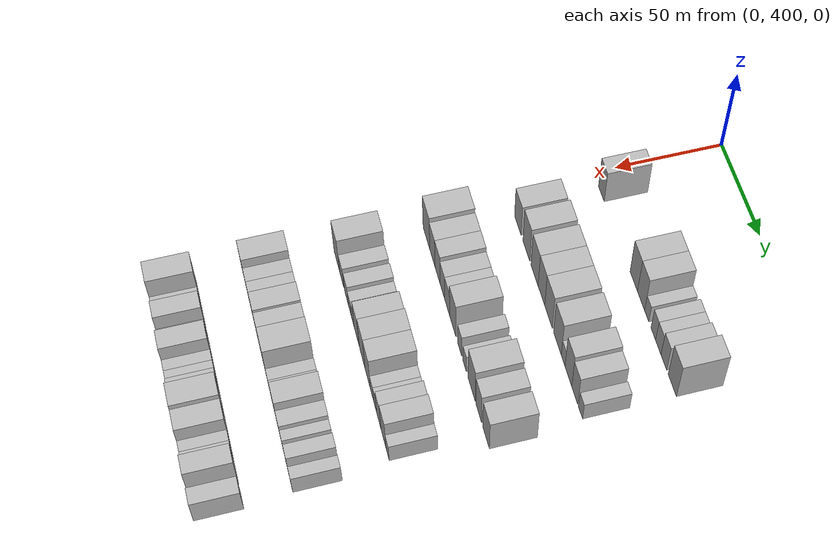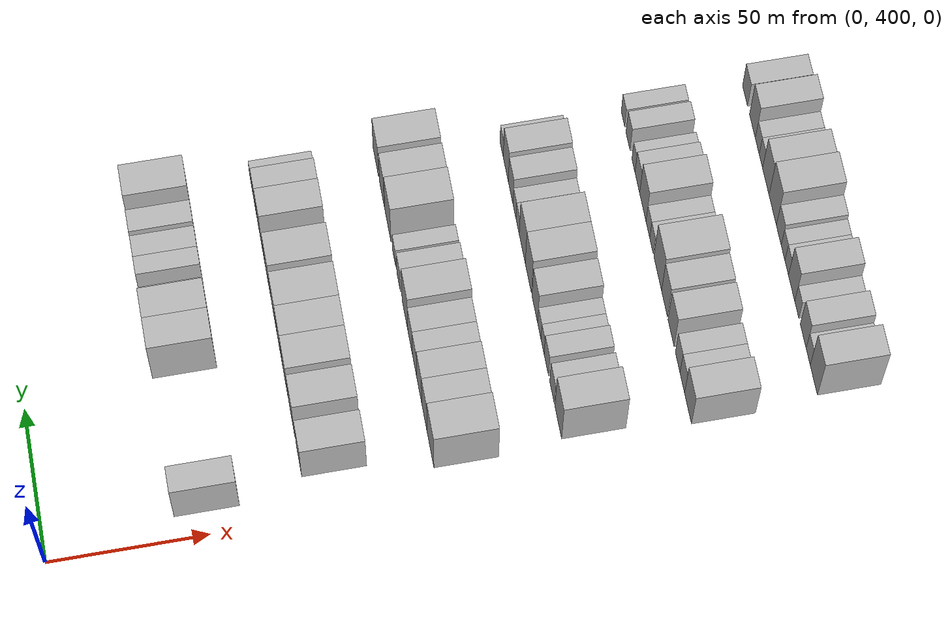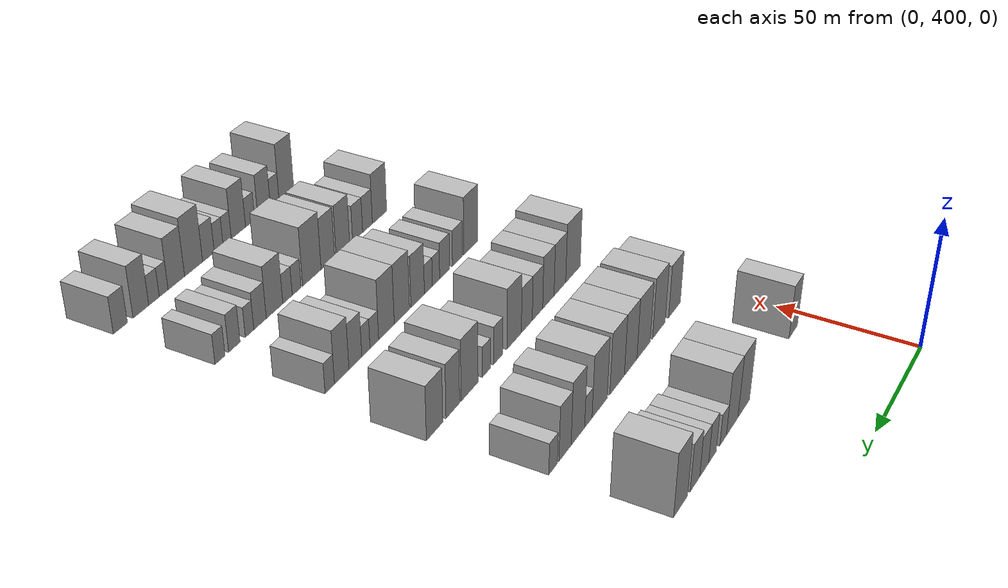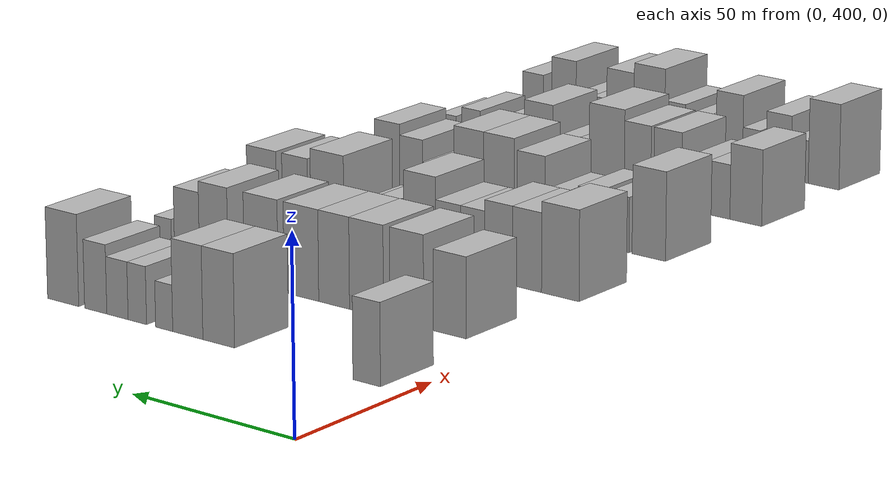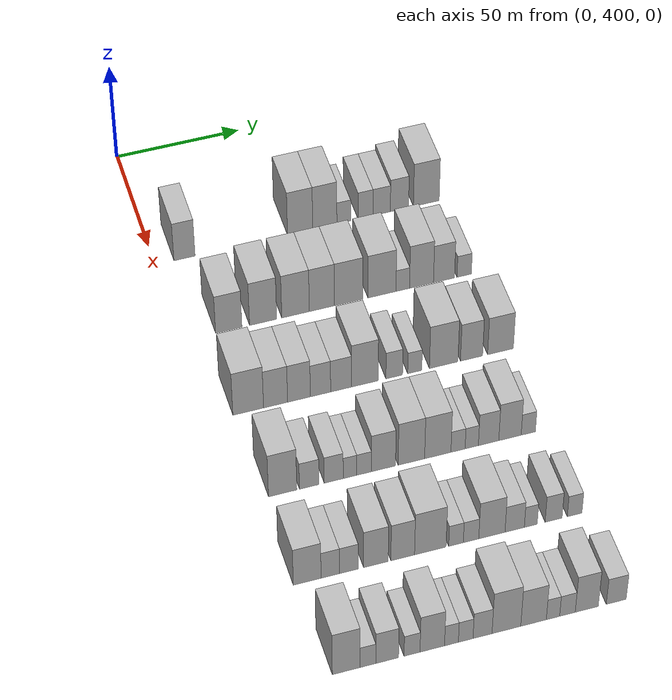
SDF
<sdf version="1.6">
 <world name="default">
  <model name="building_115">
   <static>1</static>
   <pose>50.0000 411.7737 0 0.000000 0.000000 0.000000</pose>
   <link name="link">
    <pose>0 0 10.50 0 0 0</pose>
    <collision name="collision"><geometry><box><size>20.0000 8.4492 21.0000</size></box></geometry></collision>
    <visual name="visual">
     <cast_shadows>0</cast_shadows>
     <geometry><box><size>20.0000 8.4492 21.0000</size></box></geometry>
     <material>
      <script>
       <uri>model://HANNAS_wall/materials/scripts</uri>
       <uri>model://HANNAS_wall/materials/textures</uri>
       <name>vrc/HANNAS_wall</name>
      </script>
     </material>
    </visual>
   </link>
  </model>
  <model name="building_116">
   <static>1</static>
   <pose>50.0000 458.3579 0 0.000000 0.000000 0.000000</pose>
   <link name="link">
    <pose>0 0 12.00 0 0 0</pose>
    <collision name="collision"><geometry><box><size>20.0000 10.2397 24.0000</size></box></geometry></collision>
    <visual name="visual">
     <cast_shadows>0</cast_shadows>
     <geometry><box><size>20.0000 10.2397 24.0000</size></box></geometry>
     <material>
      <script>
       <uri>model://HANNAS_wall/materials/scripts</uri>
       <uri>model://HANNAS_wall/materials/textures</uri>
       <name>vrc/HANNAS_wall</name>
      </script>
     </material>
    </visual>
   </link>
  </model>
  <model name="building_117">
   <static>1</static>
   <pose>50.0000 468.4056 0 0.000000 0.000000 0.000000</pose>
   <link name="link">
    <pose>0 0 12.00 0 0 0</pose>
    <collision name="collision"><geometry><box><size>20.0000 9.8557 24.0000</size></box></geometry></collision>
    <visual name="visual">
     <cast_shadows>0</cast_shadows>
     <geometry><box><size>20.0000 9.8557 24.0000</size></box></geometry>
     <material>
      <script>
       <uri>model://HANNAS_wall/materials/scripts</uri>
       <uri>model://HANNAS_wall/materials/textures</uri>
       <name>vrc/HANNAS_wall</name>
      </script>
     </material>
    </visual>
   </link>
  </model>
  <model name="building_118">
   <static>1</static>
   <pose>50.0000 476.1462 0 0.000000 0.000000 0.000000</pose>
   <link name="link">
    <pose>0 0 6.00 0 0 0</pose>
    <collision name="collision"><geometry><box><size>20.0000 5.6255 12.0000</size></box></geometry></collision>
    <visual name="visual">
     <cast_shadows>0</cast_shadows>
     <geometry><box><size>20.0000 5.6255 12.0000</size></box></geometry>
     <material>
      <script>
       <uri>model://HANNAS_wall/materials/scripts</uri>
       <uri>model://HANNAS_wall/materials/textures</uri>
       <name>vrc/HANNAS_wall</name>
      </script>
     </material>
    </visual>
   </link>
  </model>
  <model name="building_119">
   <static>1</static>
   <pose>50.0000 485.0264 0 0.000000 0.000000 0.000000</pose>
   <link name="link">
    <pose>0 0 7.50 0 0 0</pose>
    <collision name="collision"><geometry><box><size>20.0000 6.1349 15.0000</size></box></geometry></collision>
    <visual name="visual">
     <cast_shadows>0</cast_shadows>
     <geometry><box><size>20.0000 6.1349 15.0000</size></box></geometry>
     <material>
      <script>
       <uri>model://HANNAS_wall/materials/scripts</uri>
       <uri>model://HANNAS_wall/materials/textures</uri>
       <name>vrc/HANNAS_wall</name>
      </script>
     </material>
    </visual>
   </link>
  </model>
  <model name="building_120">
   <static>1</static>
   <pose>50.0000 491.6568 0 0.000000 0.000000 0.000000</pose>
   <link name="link">
    <pose>0 0 7.50 0 0 0</pose>
    <collision name="collision"><geometry><box><size>20.0000 7.1259 15.0000</size></box></geometry></collision>
    <visual name="visual">
     <cast_shadows>0</cast_shadows>
     <geometry><box><size>20.0000 7.1259 15.0000</size></box></geometry>
     <material>
      <script>
       <uri>model://HANNAS_wall/materials/scripts</uri>
       <uri>model://HANNAS_wall/materials/textures</uri>
       <name>vrc/HANNAS_wall</name>
      </script>
     </material>
    </visual>
   </link>
  </model>
  <model name="building_121">
   <static>1</static>
   <pose>50.0000 498.9661 0 0.000000 0.000000 0.000000</pose>
   <link name="link">
    <pose>0 0 9.00 0 0 0</pose>
    <collision name="collision"><geometry><box><size>20.0000 7.4927 18.0000</size></box></geometry></collision>
    <visual name="visual">
     <cast_shadows>0</cast_shadows>
     <geometry><box><size>20.0000 7.4927 18.0000</size></box></geometry>
     <material>
      <script>
       <uri>model://HANNAS_wall/materials/scripts</uri>
       <uri>model://HANNAS_wall/materials/textures</uri>
       <name>vrc/HANNAS_wall</name>
      </script>
     </material>
    </visual>
   </link>
  </model>
  <model name="building_122">
   <static>1</static>
   <pose>50.0000 510.0189 0 0.000000 0.000000 0.000000</pose>
   <link name="link">
    <pose>0 0 12.00 0 0 0</pose>
    <collision name="collision"><geometry><box><size>20.0000 10.6130 24.0000</size></box></geometry></collision>
    <visual name="visual">
     <cast_shadows>0</cast_shadows>
     <geometry><box><size>20.0000 10.6130 24.0000</size></box></geometry>
     <material>
      <script>
       <uri>model://HANNAS_wall/materials/scripts</uri>
       <uri>model://HANNAS_wall/materials/textures</uri>
       <name>vrc/HANNAS_wall</name>
      </script>
     </material>
    </visual>
   </link>
  </model>
  <model name="building_243">
   <static>1</static>
   <pose>90.0000 418.5160 0 0.000000 0.000000 0.000000</pose>
   <link name="link">
    <pose>0 0 10.50 0 0 0</pose>
    <collision name="collision"><geometry><box><size>20.0000 10.3552 21.0000</size></box></geometry></collision>
    <visual name="visual">
     <cast_shadows>0</cast_shadows>
     <geometry><box><size>20.0000 10.3552 21.0000</size></box></geometry>
     <material>
      <script>
       <uri>model://HANNAS_wall/materials/scripts</uri>
       <uri>model://HANNAS_wall/materials/textures</uri>
       <name>vrc/HANNAS_wall</name>
      </script>
     </material>
    </visual>
   </link>
  </model>
  <model name="building_244">
   <static>1</static>
   <pose>90.0000 432.0550 0 0.000000 0.000000 0.000000</pose>
   <link name="link">
    <pose>0 0 12.00 0 0 0</pose>
    <collision name="collision"><geometry><box><size>20.0000 10.7229 24.0000</size></box></geometry></collision>
    <visual name="visual">
     <cast_shadows>0</cast_shadows>
     <geometry><box><size>20.0000 10.7229 24.0000</size></box></geometry>
     <material>
      <script>
       <uri>model://HANNAS_wall/materials/scripts</uri>
       <uri>model://HANNAS_wall/materials/textures</uri>
       <name>vrc/HANNAS_wall</name>
      </script>
     </material>
    </visual>
   </link>
  </model>
  <model name="building_245">
   <static>1</static>
   <pose>90.0000 444.8718 0 0.000000 0.000000 0.000000</pose>
   <link name="link">
    <pose>0 0 12.00 0 0 0</pose>
    <collision name="collision"><geometry><box><size>20.0000 10.9109 24.0000</size></box></geometry></collision>
    <visual name="visual">
     <cast_shadows>0</cast_shadows>
     <geometry><box><size>20.0000 10.9109 24.0000</size></box></geometry>
     <material>
      <script>
       <uri>model://HANNAS_wall/materials/scripts</uri>
       <uri>model://HANNAS_wall/materials/textures</uri>
       <name>vrc/HANNAS_wall</name>
      </script>
     </material>
    </visual>
   </link>
  </model>
  <model name="building_246">
   <static>1</static>
   <pose>90.0000 455.3310 0 0.000000 0.000000 0.000000</pose>
   <link name="link">
    <pose>0 0 12.00 0 0 0</pose>
    <collision name="collision"><geometry><box><size>20.0000 10.0075 24.0000</size></box></geometry></collision>
    <visual name="visual">
     <cast_shadows>0</cast_shadows>
     <geometry><box><size>20.0000 10.0075 24.0000</size></box></geometry>
     <material>
      <script>
       <uri>model://HANNAS_wall/materials/scripts</uri>
       <uri>model://HANNAS_wall/materials/textures</uri>
       <name>vrc/HANNAS_wall</name>
      </script>
     </material>
    </visual>
   </link>
  </model>
  <model name="building_247">
   <static>1</static>
   <pose>90.0000 466.0081 0 0.000000 0.000000 0.000000</pose>
   <link name="link">
    <pose>0 0 12.00 0 0 0</pose>
    <collision name="collision"><geometry><box><size>20.0000 11.3467 24.0000</size></box></geometry></collision>
    <visual name="visual">
     <cast_shadows>0</cast_shadows>
     <geometry><box><size>20.0000 11.3467 24.0000</size></box></geometry>
     <material>
      <script>
       <uri>model://HANNAS_wall/materials/scripts</uri>
       <uri>model://HANNAS_wall/materials/textures</uri>
       <name>vrc/HANNAS_wall</name>
      </script>
     </material>
    </visual>
   </link>
  </model>
  <model name="building_248">
   <static>1</static>
   <pose>90.0000 479.3117 0 0.000000 0.000000 0.000000</pose>
   <link name="link">
    <pose>0 0 12.00 0 0 0</pose>
    <collision name="collision"><geometry><box><size>20.0000 11.2605 24.0000</size></box></geometry></collision>
    <visual name="visual">
     <cast_shadows>0</cast_shadows>
     <geometry><box><size>20.0000 11.2605 24.0000</size></box></geometry>
     <material>
      <script>
       <uri>model://HANNAS_wall/materials/scripts</uri>
       <uri>model://HANNAS_wall/materials/textures</uri>
       <name>vrc/HANNAS_wall</name>
      </script>
     </material>
    </visual>
   </link>
  </model>
  <model name="building_249">
   <static>1</static>
   <pose>90.0000 487.6636 0 0.000000 0.000000 0.000000</pose>
   <link name="link">
    <pose>0 0 6.00 0 0 0</pose>
    <collision name="collision"><geometry><box><size>20.0000 5.4432 12.0000</size></box></geometry></collision>
    <visual name="visual">
     <cast_shadows>0</cast_shadows>
     <geometry><box><size>20.0000 5.4432 12.0000</size></box></geometry>
     <material>
      <script>
       <uri>model://HANNAS_wall/materials/scripts</uri>
       <uri>model://HANNAS_wall/materials/textures</uri>
       <name>vrc/HANNAS_wall</name>
      </script>
     </material>
    </visual>
   </link>
  </model>
  <model name="building_250">
   <static>1</static>
   <pose>90.0000 495.2070 0 0.000000 0.000000 0.000000</pose>
   <link name="link">
    <pose>0 0 12.00 0 0 0</pose>
    <collision name="collision"><geometry><box><size>20.0000 9.6435 24.0000</size></box></geometry></collision>
    <visual name="visual">
     <cast_shadows>0</cast_shadows>
     <geometry><box><size>20.0000 9.6435 24.0000</size></box></geometry>
     <material>
      <script>
       <uri>model://HANNAS_wall/materials/scripts</uri>
       <uri>model://HANNAS_wall/materials/textures</uri>
       <name>vrc/HANNAS_wall</name>
      </script>
     </material>
    </visual>
   </link>
  </model>
  <model name="building_251">
   <static>1</static>
   <pose>90.0000 504.2819 0 0.000000 0.000000 0.000000</pose>
   <link name="link">
    <pose>0 0 10.50 0 0 0</pose>
    <collision name="collision"><geometry><box><size>20.0000 8.5062 21.0000</size></box></geometry></collision>
    <visual name="visual">
     <cast_shadows>0</cast_shadows>
     <geometry><box><size>20.0000 8.5062 21.0000</size></box></geometry>
     <material>
      <script>
       <uri>model://HANNAS_wall/materials/scripts</uri>
       <uri>model://HANNAS_wall/materials/textures</uri>
       <name>vrc/HANNAS_wall</name>
      </script>
     </material>
    </visual>
   </link>
  </model>
  <model name="building_252">
   <static>1</static>
   <pose>90.0000 512.4510 0 0.000000 0.000000 0.000000</pose>
   <link name="link">
    <pose>0 0 6.00 0 0 0</pose>
    <collision name="collision"><geometry><box><size>20.0000 5.8322 12.0000</size></box></geometry></collision>
    <visual name="visual">
     <cast_shadows>0</cast_shadows>
     <geometry><box><size>20.0000 5.8322 12.0000</size></box></geometry>
     <material>
      <script>
       <uri>model://HANNAS_wall/materials/scripts</uri>
       <uri>model://HANNAS_wall/materials/textures</uri>
       <name>vrc/HANNAS_wall</name>
      </script>
     </material>
    </visual>
   </link>
  </model>
  <model name="building_380">
   <static>1</static>
   <pose>130.0000 414.9752 0 0.000000 0.000000 0.000000</pose>
   <link name="link">
    <pose>0 0 12.00 0 0 0</pose>
    <collision name="collision"><geometry><box><size>20.0000 11.8049 24.0000</size></box></geometry></collision>
    <visual name="visual">
     <cast_shadows>0</cast_shadows>
     <geometry><box><size>20.0000 11.8049 24.0000</size></box></geometry>
     <material>
      <script>
       <uri>model://HANNAS_wall/materials/scripts</uri>
       <uri>model://HANNAS_wall/materials/textures</uri>
       <name>vrc/HANNAS_wall</name>
      </script>
     </material>
    </visual>
   </link>
  </model>
  <model name="building_381">
   <static>1</static>
   <pose>130.0000 425.5160 0 0.000000 0.000000 0.000000</pose>
   <link name="link">
    <pose>0 0 10.50 0 0 0</pose>
    <collision name="collision"><geometry><box><size>20.0000 9.2766 21.0000</size></box></geometry></collision>
    <visual name="visual">
     <cast_shadows>0</cast_shadows>
     <geometry><box><size>20.0000 9.2766 21.0000</size></box></geometry>
     <material>
      <script>
       <uri>model://HANNAS_wall/materials/scripts</uri>
       <uri>model://HANNAS_wall/materials/textures</uri>
       <name>vrc/HANNAS_wall</name>
      </script>
     </material>
    </visual>
   </link>
  </model>
  <model name="building_382">
   <static>1</static>
   <pose>130.0000 434.5605 0 0.000000 0.000000 0.000000</pose>
   <link name="link">
    <pose>0 0 10.50 0 0 0</pose>
    <collision name="collision"><geometry><box><size>20.0000 8.8125 21.0000</size></box></geometry></collision>
    <visual name="visual">
     <cast_shadows>0</cast_shadows>
     <geometry><box><size>20.0000 8.8125 21.0000</size></box></geometry>
     <material>
      <script>
       <uri>model://HANNAS_wall/materials/scripts</uri>
       <uri>model://HANNAS_wall/materials/textures</uri>
       <name>vrc/HANNAS_wall</name>
      </script>
     </material>
    </visual>
   </link>
  </model>
  <model name="building_383">
   <static>1</static>
   <pose>130.0000 442.9032 0 0.000000 0.000000 0.000000</pose>
   <link name="link">
    <pose>0 0 9.00 0 0 0</pose>
    <collision name="collision"><geometry><box><size>20.0000 7.8728 18.0000</size></box></geometry></collision>
    <visual name="visual">
     <cast_shadows>0</cast_shadows>
     <geometry><box><size>20.0000 7.8728 18.0000</size></box></geometry>
     <material>
      <script>
       <uri>model://HANNAS_wall/materials/scripts</uri>
       <uri>model://HANNAS_wall/materials/textures</uri>
       <name>vrc/HANNAS_wall</name>
      </script>
     </material>
    </visual>
   </link>
  </model>
  <model name="building_384">
   <static>1</static>
   <pose>130.0000 450.9014 0 0.000000 0.000000 0.000000</pose>
   <link name="link">
    <pose>0 0 9.00 0 0 0</pose>
    <collision name="collision"><geometry><box><size>20.0000 8.1236 18.0000</size></box></geometry></collision>
    <visual name="visual">
     <cast_shadows>0</cast_shadows>
     <geometry><box><size>20.0000 8.1236 18.0000</size></box></geometry>
     <material>
      <script>
       <uri>model://HANNAS_wall/materials/scripts</uri>
       <uri>model://HANNAS_wall/materials/textures</uri>
       <name>vrc/HANNAS_wall</name>
      </script>
     </material>
    </visual>
   </link>
  </model>
  <model name="building_385">
   <static>1</static>
   <pose>130.0000 460.1772 0 0.000000 0.000000 0.000000</pose>
   <link name="link">
    <pose>0 0 12.00 0 0 0</pose>
    <collision name="collision"><geometry><box><size>20.0000 10.4281 24.0000</size></box></geometry></collision>
    <visual name="visual">
     <cast_shadows>0</cast_shadows>
     <geometry><box><size>20.0000 10.4281 24.0000</size></box></geometry>
     <material>
      <script>
       <uri>model://HANNAS_wall/materials/scripts</uri>
       <uri>model://HANNAS_wall/materials/textures</uri>
       <name>vrc/HANNAS_wall</name>
      </script>
     </material>
    </visual>
   </link>
  </model>
  <model name="building_386">
   <static>1</static>
   <pose>130.0000 471.6604 0 0.000000 0.000000 0.000000</pose>
   <link name="link">
    <pose>0 0 7.50 0 0 0</pose>
    <collision name="collision"><geometry><box><size>20.0000 6.5382 15.0000</size></box></geometry></collision>
    <visual name="visual">
     <cast_shadows>0</cast_shadows>
     <geometry><box><size>20.0000 6.5382 15.0000</size></box></geometry>
     <material>
      <script>
       <uri>model://HANNAS_wall/materials/scripts</uri>
       <uri>model://HANNAS_wall/materials/textures</uri>
       <name>vrc/HANNAS_wall</name>
      </script>
     </material>
    </visual>
   </link>
  </model>
  <model name="building_387">
   <static>1</static>
   <pose>130.0000 479.7058 0 0.000000 0.000000 0.000000</pose>
   <link name="link">
    <pose>0 0 6.00 0 0 0</pose>
    <collision name="collision"><geometry><box><size>20.0000 5.5526 12.0000</size></box></geometry></collision>
    <visual name="visual">
     <cast_shadows>0</cast_shadows>
     <geometry><box><size>20.0000 5.5526 12.0000</size></box></geometry>
     <material>
      <script>
       <uri>model://HANNAS_wall/materials/scripts</uri>
       <uri>model://HANNAS_wall/materials/textures</uri>
       <name>vrc/HANNAS_wall</name>
      </script>
     </material>
    </visual>
   </link>
  </model>
  <model name="building_388">
   <static>1</static>
   <pose>130.0000 491.1103 0 0.000000 0.000000 0.000000</pose>
   <link name="link">
    <pose>0 0 12.00 0 0 0</pose>
    <collision name="collision"><geometry><box><size>20.0000 11.2564 24.0000</size></box></geometry></collision>
    <visual name="visual">
     <cast_shadows>0</cast_shadows>
     <geometry><box><size>20.0000 11.2564 24.0000</size></box></geometry>
     <material>
      <script>
       <uri>model://HANNAS_wall/materials/scripts</uri>
       <uri>model://HANNAS_wall/materials/textures</uri>
       <name>vrc/HANNAS_wall</name>
      </script>
     </material>
    </visual>
   </link>
  </model>
  <model name="building_389">
   <static>1</static>
   <pose>130.0000 502.1174 0 0.000000 0.000000 0.000000</pose>
   <link name="link">
    <pose>0 0 10.50 0 0 0</pose>
    <collision name="collision"><geometry><box><size>20.0000 8.7579 21.0000</size></box></geometry></collision>
    <visual name="visual">
     <cast_shadows>0</cast_shadows>
     <geometry><box><size>20.0000 8.7579 21.0000</size></box></geometry>
     <material>
      <script>
       <uri>model://HANNAS_wall/materials/scripts</uri>
       <uri>model://HANNAS_wall/materials/textures</uri>
       <name>vrc/HANNAS_wall</name>
      </script>
     </material>
    </visual>
   </link>
  </model>
  <model name="building_390">
   <static>1</static>
   <pose>130.0000 513.6006 0 0.000000 0.000000 0.000000</pose>
   <link name="link">
    <pose>0 0 10.50 0 0 0</pose>
    <collision name="collision"><geometry><box><size>20.0000 10.2085 21.0000</size></box></geometry></collision>
    <visual name="visual">
     <cast_shadows>0</cast_shadows>
     <geometry><box><size>20.0000 10.2085 21.0000</size></box></geometry>
     <material>
      <script>
       <uri>model://HANNAS_wall/materials/scripts</uri>
       <uri>model://HANNAS_wall/materials/textures</uri>
       <name>vrc/HANNAS_wall</name>
      </script>
     </material>
    </visual>
   </link>
  </model>
  <model name="building_521">
   <static>1</static>
   <pose>170.0000 416.7157 0 0.000000 0.000000 0.000000</pose>
   <link name="link">
    <pose>0 0 12.00 0 0 0</pose>
    <collision name="collision"><geometry><box><size>20.0000 10.6817 24.0000</size></box></geometry></collision>
    <visual name="visual">
     <cast_shadows>0</cast_shadows>
     <geometry><box><size>20.0000 10.6817 24.0000</size></box></geometry>
     <material>
      <script>
       <uri>model://HANNAS_wall/materials/scripts</uri>
       <uri>model://HANNAS_wall/materials/textures</uri>
       <name>vrc/HANNAS_wall</name>
      </script>
     </material>
    </visual>
   </link>
  </model>
  <model name="building_522">
   <static>1</static>
   <pose>170.0000 426.7442 0 0.000000 0.000000 0.000000</pose>
   <link name="link">
    <pose>0 0 7.50 0 0 0</pose>
    <collision name="collision"><geometry><box><size>20.0000 7.3752 15.0000</size></box></geometry></collision>
    <visual name="visual">
     <cast_shadows>0</cast_shadows>
     <geometry><box><size>20.0000 7.3752 15.0000</size></box></geometry>
     <material>
      <script>
       <uri>model://HANNAS_wall/materials/scripts</uri>
       <uri>model://HANNAS_wall/materials/textures</uri>
       <name>vrc/HANNAS_wall</name>
      </script>
     </material>
    </visual>
   </link>
  </model>
  <model name="building_523">
   <static>1</static>
   <pose>170.0000 436.0298 0 0.000000 0.000000 0.000000</pose>
   <link name="link">
    <pose>0 0 7.50 0 0 0</pose>
    <collision name="collision"><geometry><box><size>20.0000 7.1961 15.0000</size></box></geometry></collision>
    <visual name="visual">
     <cast_shadows>0</cast_shadows>
     <geometry><box><size>20.0000 7.1961 15.0000</size></box></geometry>
     <material>
      <script>
       <uri>model://HANNAS_wall/materials/scripts</uri>
       <uri>model://HANNAS_wall/materials/textures</uri>
       <name>vrc/HANNAS_wall</name>
      </script>
     </material>
    </visual>
   </link>
  </model>
  <model name="building_524">
   <static>1</static>
   <pose>170.0000 442.2041 0 0.000000 0.000000 0.000000</pose>
   <link name="link">
    <pose>0 0 6.00 0 0 0</pose>
    <collision name="collision"><geometry><box><size>20.0000 5.1525 12.0000</size></box></geometry></collision>
    <visual name="visual">
     <cast_shadows>0</cast_shadows>
     <geometry><box><size>20.0000 5.1525 12.0000</size></box></geometry>
     <material>
      <script>
       <uri>model://HANNAS_wall/materials/scripts</uri>
       <uri>model://HANNAS_wall/materials/textures</uri>
       <name>vrc/HANNAS_wall</name>
      </script>
     </material>
    </visual>
   </link>
  </model>
  <model name="building_525">
   <static>1</static>
   <pose>170.0000 447.5580 0 0.000000 0.000000 0.000000</pose>
   <link name="link">
    <pose>0 0 6.00 0 0 0</pose>
    <collision name="collision"><geometry><box><size>20.0000 5.5552 12.0000</size></box></geometry></collision>
    <visual name="visual">
     <cast_shadows>0</cast_shadows>
     <geometry><box><size>20.0000 5.5552 12.0000</size></box></geometry>
     <material>
      <script>
       <uri>model://HANNAS_wall/materials/scripts</uri>
       <uri>model://HANNAS_wall/materials/textures</uri>
       <name>vrc/HANNAS_wall</name>
      </script>
     </material>
    </visual>
   </link>
  </model>
  <model name="building_526">
   <static>1</static>
   <pose>170.0000 454.9529 0 0.000000 0.000000 0.000000</pose>
   <link name="link">
    <pose>0 0 10.50 0 0 0</pose>
    <collision name="collision"><geometry><box><size>20.0000 9.2347 21.0000</size></box></geometry></collision>
    <visual name="visual">
     <cast_shadows>0</cast_shadows>
     <geometry><box><size>20.0000 9.2347 21.0000</size></box></geometry>
     <material>
      <script>
       <uri>model://HANNAS_wall/materials/scripts</uri>
       <uri>model://HANNAS_wall/materials/textures</uri>
       <name>vrc/HANNAS_wall</name>
      </script>
     </material>
    </visual>
   </link>
  </model>
  <model name="building_527">
   <static>1</static>
   <pose>170.0000 465.6386 0 0.000000 0.000000 0.000000</pose>
   <link name="link">
    <pose>0 0 12.00 0 0 0</pose>
    <collision name="collision"><geometry><box><size>20.0000 10.1367 24.0000</size></box></geometry></collision>
    <visual name="visual">
     <cast_shadows>0</cast_shadows>
     <geometry><box><size>20.0000 10.1367 24.0000</size></box></geometry>
     <material>
      <script>
       <uri>model://HANNAS_wall/materials/scripts</uri>
       <uri>model://HANNAS_wall/materials/textures</uri>
       <name>vrc/HANNAS_wall</name>
      </script>
     </material>
    </visual>
   </link>
  </model>
  <model name="building_528">
   <static>1</static>
   <pose>170.0000 475.7717 0 0.000000 0.000000 0.000000</pose>
   <link name="link">
    <pose>0 0 12.00 0 0 0</pose>
    <collision name="collision"><geometry><box><size>20.0000 10.1295 24.0000</size></box></geometry></collision>
    <visual name="visual">
     <cast_shadows>0</cast_shadows>
     <geometry><box><size>20.0000 10.1295 24.0000</size></box></geometry>
     <material>
      <script>
       <uri>model://HANNAS_wall/materials/scripts</uri>
       <uri>model://HANNAS_wall/materials/textures</uri>
       <name>vrc/HANNAS_wall</name>
      </script>
     </material>
    </visual>
   </link>
  </model>
  <model name="building_529">
   <static>1</static>
   <pose>170.0000 483.5727 0 0.000000 0.000000 0.000000</pose>
   <link name="link">
    <pose>0 0 6.00 0 0 0</pose>
    <collision name="collision"><geometry><box><size>20.0000 5.4724 12.0000</size></box></geometry></collision>
    <visual name="visual">
     <cast_shadows>0</cast_shadows>
     <geometry><box><size>20.0000 5.4724 12.0000</size></box></geometry>
     <material>
      <script>
       <uri>model://HANNAS_wall/materials/scripts</uri>
       <uri>model://HANNAS_wall/materials/textures</uri>
       <name>vrc/HANNAS_wall</name>
      </script>
     </material>
    </visual>
   </link>
  </model>
  <model name="building_530">
   <static>1</static>
   <pose>170.0000 488.8740 0 0.000000 0.000000 0.000000</pose>
   <link name="link">
    <pose>0 0 6.00 0 0 0</pose>
    <collision name="collision"><geometry><box><size>20.0000 5.1302 12.0000</size></box></geometry></collision>
    <visual name="visual">
     <cast_shadows>0</cast_shadows>
     <geometry><box><size>20.0000 5.1302 12.0000</size></box></geometry>
     <material>
      <script>
       <uri>model://HANNAS_wall/materials/scripts</uri>
       <uri>model://HANNAS_wall/materials/textures</uri>
       <name>vrc/HANNAS_wall</name>
      </script>
     </material>
    </visual>
   </link>
  </model>
  <model name="building_531">
   <static>1</static>
   <pose>170.0000 495.3900 0 0.000000 0.000000 0.000000</pose>
   <link name="link">
    <pose>0 0 9.00 0 0 0</pose>
    <collision name="collision"><geometry><box><size>20.0000 7.9017 18.0000</size></box></geometry></collision>
    <visual name="visual">
     <cast_shadows>0</cast_shadows>
     <geometry><box><size>20.0000 7.9017 18.0000</size></box></geometry>
     <material>
      <script>
       <uri>model://HANNAS_wall/materials/scripts</uri>
       <uri>model://HANNAS_wall/materials/textures</uri>
       <name>vrc/HANNAS_wall</name>
      </script>
     </material>
    </visual>
   </link>
  </model>
  <model name="building_532">
   <static>1</static>
   <pose>170.0000 503.6935 0 0.000000 0.000000 0.000000</pose>
   <link name="link">
    <pose>0 0 10.50 0 0 0</pose>
    <collision name="collision"><geometry><box><size>20.0000 8.7053 21.0000</size></box></geometry></collision>
    <visual name="visual">
     <cast_shadows>0</cast_shadows>
     <geometry><box><size>20.0000 8.7053 21.0000</size></box></geometry>
     <material>
      <script>
       <uri>model://HANNAS_wall/materials/scripts</uri>
       <uri>model://HANNAS_wall/materials/textures</uri>
       <name>vrc/HANNAS_wall</name>
      </script>
     </material>
    </visual>
   </link>
  </model>
  <model name="building_533">
   <static>1</static>
   <pose>170.0000 510.8181 0 0.000000 0.000000 0.000000</pose>
   <link name="link">
    <pose>0 0 6.00 0 0 0</pose>
    <collision name="collision"><geometry><box><size>20.0000 5.5440 12.0000</size></box></geometry></collision>
    <visual name="visual">
     <cast_shadows>0</cast_shadows>
     <geometry><box><size>20.0000 5.5440 12.0000</size></box></geometry>
     <material>
      <script>
       <uri>model://HANNAS_wall/materials/scripts</uri>
       <uri>model://HANNAS_wall/materials/textures</uri>
       <name>vrc/HANNAS_wall</name>
      </script>
     </material>
    </visual>
   </link>
  </model>
  <model name="building_663">
   <static>1</static>
   <pose>210.0000 414.2250 0 0.000000 0.000000 0.000000</pose>
   <link name="link">
    <pose>0 0 10.50 0 0 0</pose>
    <collision name="collision"><geometry><box><size>20.0000 10.2372 21.0000</size></box></geometry></collision>
    <visual name="visual">
     <cast_shadows>0</cast_shadows>
     <geometry><box><size>20.0000 10.2372 21.0000</size></box></geometry>
     <material>
      <script>
       <uri>model://HANNAS_wall/materials/scripts</uri>
       <uri>model://HANNAS_wall/materials/textures</uri>
       <name>vrc/HANNAS_wall</name>
      </script>
     </material>
    </visual>
   </link>
  </model>
  <model name="building_664">
   <static>1</static>
   <pose>210.0000 422.7601 0 0.000000 0.000000 0.000000</pose>
   <link name="link">
    <pose>0 0 7.50 0 0 0</pose>
    <collision name="collision"><geometry><box><size>20.0000 6.8329 15.0000</size></box></geometry></collision>
    <visual name="visual">
     <cast_shadows>0</cast_shadows>
     <geometry><box><size>20.0000 6.8329 15.0000</size></box></geometry>
     <material>
      <script>
       <uri>model://HANNAS_wall/materials/scripts</uri>
       <uri>model://HANNAS_wall/materials/textures</uri>
       <name>vrc/HANNAS_wall</name>
      </script>
     </material>
    </visual>
   </link>
  </model>
  <model name="building_665">
   <static>1</static>
   <pose>210.0000 429.6343 0 0.000000 0.000000 0.000000</pose>
   <link name="link">
    <pose>0 0 7.50 0 0 0</pose>
    <collision name="collision"><geometry><box><size>20.0000 6.9156 15.0000</size></box></geometry></collision>
    <visual name="visual">
     <cast_shadows>0</cast_shadows>
     <geometry><box><size>20.0000 6.9156 15.0000</size></box></geometry>
     <material>
      <script>
       <uri>model://HANNAS_wall/materials/scripts</uri>
       <uri>model://HANNAS_wall/materials/textures</uri>
       <name>vrc/HANNAS_wall</name>
      </script>
     </material>
    </visual>
   </link>
  </model>
  <model name="building_666">
   <static>1</static>
   <pose>210.0000 439.6663 0 0.000000 0.000000 0.000000</pose>
   <link name="link">
    <pose>0 0 10.50 0 0 0</pose>
    <collision name="collision"><geometry><box><size>20.0000 9.1484 21.0000</size></box></geometry></collision>
    <visual name="visual">
     <cast_shadows>0</cast_shadows>
     <geometry><box><size>20.0000 9.1484 21.0000</size></box></geometry>
     <material>
      <script>
       <uri>model://HANNAS_wall/materials/scripts</uri>
       <uri>model://HANNAS_wall/materials/textures</uri>
       <name>vrc/HANNAS_wall</name>
      </script>
     </material>
    </visual>
   </link>
  </model>
  <model name="building_667">
   <static>1</static>
   <pose>210.0000 449.6590 0 0.000000 0.000000 0.000000</pose>
   <link name="link">
    <pose>0 0 10.50 0 0 0</pose>
    <collision name="collision"><geometry><box><size>20.0000 8.8369 21.0000</size></box></geometry></collision>
    <visual name="visual">
     <cast_shadows>0</cast_shadows>
     <geometry><box><size>20.0000 8.8369 21.0000</size></box></geometry>
     <material>
      <script>
       <uri>model://HANNAS_wall/materials/scripts</uri>
       <uri>model://HANNAS_wall/materials/textures</uri>
       <name>vrc/HANNAS_wall</name>
      </script>
     </material>
    </visual>
   </link>
  </model>
  <model name="building_668">
   <static>1</static>
   <pose>210.0000 459.9796 0 0.000000 0.000000 0.000000</pose>
   <link name="link">
    <pose>0 0 12.00 0 0 0</pose>
    <collision name="collision"><geometry><box><size>20.0000 11.8042 24.0000</size></box></geometry></collision>
    <visual name="visual">
     <cast_shadows>0</cast_shadows>
     <geometry><box><size>20.0000 11.8042 24.0000</size></box></geometry>
     <material>
      <script>
       <uri>model://HANNAS_wall/materials/scripts</uri>
       <uri>model://HANNAS_wall/materials/textures</uri>
       <name>vrc/HANNAS_wall</name>
      </script>
     </material>
    </visual>
   </link>
  </model>
  <model name="building_669">
   <static>1</static>
   <pose>210.0000 469.6285 0 0.000000 0.000000 0.000000</pose>
   <link name="link">
    <pose>0 0 6.00 0 0 0</pose>
    <collision name="collision"><geometry><box><size>20.0000 5.4936 12.0000</size></box></geometry></collision>
    <visual name="visual">
     <cast_shadows>0</cast_shadows>
     <geometry><box><size>20.0000 5.4936 12.0000</size></box></geometry>
     <material>
      <script>
       <uri>model://HANNAS_wall/materials/scripts</uri>
       <uri>model://HANNAS_wall/materials/textures</uri>
       <name>vrc/HANNAS_wall</name>
      </script>
     </material>
    </visual>
   </link>
  </model>
  <model name="building_670">
   <static>1</static>
   <pose>210.0000 475.2798 0 0.000000 0.000000 0.000000</pose>
   <link name="link">
    <pose>0 0 6.00 0 0 0</pose>
    <collision name="collision"><geometry><box><size>20.0000 5.8089 12.0000</size></box></geometry></collision>
    <visual name="visual">
     <cast_shadows>0</cast_shadows>
     <geometry><box><size>20.0000 5.8089 12.0000</size></box></geometry>
     <material>
      <script>
       <uri>model://HANNAS_wall/materials/scripts</uri>
       <uri>model://HANNAS_wall/materials/textures</uri>
       <name>vrc/HANNAS_wall</name>
      </script>
     </material>
    </visual>
   </link>
  </model>
  <model name="building_671">
   <static>1</static>
   <pose>210.0000 483.1482 0 0.000000 0.000000 0.000000</pose>
   <link name="link">
    <pose>0 0 10.50 0 0 0</pose>
    <collision name="collision"><geometry><box><size>20.0000 9.9280 21.0000</size></box></geometry></collision>
    <visual name="visual">
     <cast_shadows>0</cast_shadows>
     <geometry><box><size>20.0000 9.9280 21.0000</size></box></geometry>
     <material>
      <script>
       <uri>model://HANNAS_wall/materials/scripts</uri>
       <uri>model://HANNAS_wall/materials/textures</uri>
       <name>vrc/HANNAS_wall</name>
      </script>
     </material>
    </visual>
   </link>
  </model>
  <model name="building_672">
   <static>1</static>
   <pose>210.0000 491.7737 0 0.000000 0.000000 0.000000</pose>
   <link name="link">
    <pose>0 0 7.50 0 0 0</pose>
    <collision name="collision"><geometry><box><size>20.0000 7.3230 15.0000</size></box></geometry></collision>
    <visual name="visual">
     <cast_shadows>0</cast_shadows>
     <geometry><box><size>20.0000 7.3230 15.0000</size></box></geometry>
     <material>
      <script>
       <uri>model://HANNAS_wall/materials/scripts</uri>
       <uri>model://HANNAS_wall/materials/textures</uri>
       <name>vrc/HANNAS_wall</name>
      </script>
     </material>
    </visual>
   </link>
  </model>
  <model name="building_673">
   <static>1</static>
   <pose>210.0000 497.8809 0 0.000000 0.000000 0.000000</pose>
   <link name="link">
    <pose>0 0 6.00 0 0 0</pose>
    <collision name="collision"><geometry><box><size>20.0000 4.8913 12.0000</size></box></geometry></collision>
    <visual name="visual">
     <cast_shadows>0</cast_shadows>
     <geometry><box><size>20.0000 4.8913 12.0000</size></box></geometry>
     <material>
      <script>
       <uri>model://HANNAS_wall/materials/scripts</uri>
       <uri>model://HANNAS_wall/materials/textures</uri>
       <name>vrc/HANNAS_wall</name>
      </script>
     </material>
    </visual>
   </link>
  </model>
  <model name="building_674">
   <static>1</static>
   <pose>210.0000 506.5572 0 0.000000 0.000000 0.000000</pose>
   <link name="link">
    <pose>0 0 7.50 0 0 0</pose>
    <collision name="collision"><geometry><box><size>20.0000 6.4613 15.0000</size></box></geometry></collision>
    <visual name="visual">
     <cast_shadows>0</cast_shadows>
     <geometry><box><size>20.0000 6.4613 15.0000</size></box></geometry>
     <material>
      <script>
       <uri>model://HANNAS_wall/materials/scripts</uri>
       <uri>model://HANNAS_wall/materials/textures</uri>
       <name>vrc/HANNAS_wall</name>
      </script>
     </material>
    </visual>
   </link>
  </model>
  <model name="building_675">
   <static>1</static>
   <pose>210.0000 514.5804 0 0.000000 0.000000 0.000000</pose>
   <link name="link">
    <pose>0 0 6.00 0 0 0</pose>
    <collision name="collision"><geometry><box><size>20.0000 5.5852 12.0000</size></box></geometry></collision>
    <visual name="visual">
     <cast_shadows>0</cast_shadows>
     <geometry><box><size>20.0000 5.5852 12.0000</size></box></geometry>
     <material>
      <script>
       <uri>model://HANNAS_wall/materials/scripts</uri>
       <uri>model://HANNAS_wall/materials/textures</uri>
       <name>vrc/HANNAS_wall</name>
      </script>
     </material>
    </visual>
   </link>
  </model>
  <model name="building_807">
   <static>1</static>
   <pose>250.0000 416.5087 0 0.000000 0.000000 0.000000</pose>
   <link name="link">
    <pose>0 0 12.00 0 0 0</pose>
    <collision name="collision"><geometry><box><size>20.0000 10.0191 24.0000</size></box></geometry></collision>
    <visual name="visual">
     <cast_shadows>0</cast_shadows>
     <geometry><box><size>20.0000 10.0191 24.0000</size></box></geometry>
     <material>
      <script>
       <uri>model://HANNAS_wall/materials/scripts</uri>
       <uri>model://HANNAS_wall/materials/textures</uri>
       <name>vrc/HANNAS_wall</name>
      </script>
     </material>
    </visual>
   </link>
  </model>
  <model name="building_808">
   <static>1</static>
   <pose>250.0000 424.3631 0 0.000000 0.000000 0.000000</pose>
   <link name="link">
    <pose>0 0 6.00 0 0 0</pose>
    <collision name="collision"><geometry><box><size>20.0000 5.6897 12.0000</size></box></geometry></collision>
    <visual name="visual">
     <cast_shadows>0</cast_shadows>
     <geometry><box><size>20.0000 5.6897 12.0000</size></box></geometry>
     <material>
      <script>
       <uri>model://HANNAS_wall/materials/scripts</uri>
       <uri>model://HANNAS_wall/materials/textures</uri>
       <name>vrc/HANNAS_wall</name>
      </script>
     </material>
    </visual>
   </link>
  </model>
  <model name="building_809">
   <static>1</static>
   <pose>250.0000 431.3450 0 0.000000 0.000000 0.000000</pose>
   <link name="link">
    <pose>0 0 9.00 0 0 0</pose>
    <collision name="collision"><geometry><box><size>20.0000 8.2742 18.0000</size></box></geometry></collision>
    <visual name="visual">
     <cast_shadows>0</cast_shadows>
     <geometry><box><size>20.0000 8.2742 18.0000</size></box></geometry>
     <material>
      <script>
       <uri>model://HANNAS_wall/materials/scripts</uri>
       <uri>model://HANNAS_wall/materials/textures</uri>
       <name>vrc/HANNAS_wall</name>
      </script>
     </material>
    </visual>
   </link>
  </model>
  <model name="building_810">
   <static>1</static>
   <pose>250.0000 440.3820 0 0.000000 0.000000 0.000000</pose>
   <link name="link">
    <pose>0 0 6.00 0 0 0</pose>
    <collision name="collision"><geometry><box><size>20.0000 5.7997 12.0000</size></box></geometry></collision>
    <visual name="visual">
     <cast_shadows>0</cast_shadows>
     <geometry><box><size>20.0000 5.7997 12.0000</size></box></geometry>
     <material>
      <script>
       <uri>model://HANNAS_wall/materials/scripts</uri>
       <uri>model://HANNAS_wall/materials/textures</uri>
       <name>vrc/HANNAS_wall</name>
      </script>
     </material>
    </visual>
   </link>
  </model>
  <model name="building_811">
   <static>1</static>
   <pose>250.0000 447.7591 0 0.000000 0.000000 0.000000</pose>
   <link name="link">
    <pose>0 0 10.50 0 0 0</pose>
    <collision name="collision"><geometry><box><size>20.0000 8.9546 21.0000</size></box></geometry></collision>
    <visual name="visual">
     <cast_shadows>0</cast_shadows>
     <geometry><box><size>20.0000 8.9546 21.0000</size></box></geometry>
     <material>
      <script>
       <uri>model://HANNAS_wall/materials/scripts</uri>
       <uri>model://HANNAS_wall/materials/textures</uri>
       <name>vrc/HANNAS_wall</name>
      </script>
     </material>
    </visual>
   </link>
  </model>
  <model name="building_812">
   <static>1</static>
   <pose>250.0000 454.7811 0 0.000000 0.000000 0.000000</pose>
   <link name="link">
    <pose>0 0 6.00 0 0 0</pose>
    <collision name="collision"><geometry><box><size>20.0000 5.0895 12.0000</size></box></geometry></collision>
    <visual name="visual">
     <cast_shadows>0</cast_shadows>
     <geometry><box><size>20.0000 5.0895 12.0000</size></box></geometry>
     <material>
      <script>
       <uri>model://HANNAS_wall/materials/scripts</uri>
       <uri>model://HANNAS_wall/materials/textures</uri>
       <name>vrc/HANNAS_wall</name>
      </script>
     </material>
    </visual>
   </link>
  </model>
  <model name="building_813">
   <static>1</static>
   <pose>250.0000 460.0056 0 0.000000 0.000000 0.000000</pose>
   <link name="link">
    <pose>0 0 6.00 0 0 0</pose>
    <collision name="collision"><geometry><box><size>20.0000 5.3595 12.0000</size></box></geometry></collision>
    <visual name="visual">
     <cast_shadows>0</cast_shadows>
     <geometry><box><size>20.0000 5.3595 12.0000</size></box></geometry>
     <material>
      <script>
       <uri>model://HANNAS_wall/materials/scripts</uri>
       <uri>model://HANNAS_wall/materials/textures</uri>
       <name>vrc/HANNAS_wall</name>
      </script>
     </material>
    </visual>
   </link>
  </model>
  <model name="building_814">
   <static>1</static>
   <pose>250.0000 466.1784 0 0.000000 0.000000 0.000000</pose>
   <link name="link">
    <pose>0 0 7.50 0 0 0</pose>
    <collision name="collision"><geometry><box><size>20.0000 6.9862 15.0000</size></box></geometry></collision>
    <visual name="visual">
     <cast_shadows>0</cast_shadows>
     <geometry><box><size>20.0000 6.9862 15.0000</size></box></geometry>
     <material>
      <script>
       <uri>model://HANNAS_wall/materials/scripts</uri>
       <uri>model://HANNAS_wall/materials/textures</uri>
       <name>vrc/HANNAS_wall</name>
      </script>
     </material>
    </visual>
   </link>
  </model>
  <model name="building_815">
   <static>1</static>
   <pose>250.0000 474.9790 0 0.000000 0.000000 0.000000</pose>
   <link name="link">
    <pose>0 0 12.00 0 0 0</pose>
    <collision name="collision"><geometry><box><size>20.0000 10.6151 24.0000</size></box></geometry></collision>
    <visual name="visual">
     <cast_shadows>0</cast_shadows>
     <geometry><box><size>20.0000 10.6151 24.0000</size></box></geometry>
     <material>
      <script>
       <uri>model://HANNAS_wall/materials/scripts</uri>
       <uri>model://HANNAS_wall/materials/textures</uri>
       <name>vrc/HANNAS_wall</name>
      </script>
     </material>
    </visual>
   </link>
  </model>
  <model name="building_816">
   <static>1</static>
   <pose>250.0000 485.0154 0 0.000000 0.000000 0.000000</pose>
   <link name="link">
    <pose>0 0 10.50 0 0 0</pose>
    <collision name="collision"><geometry><box><size>20.0000 9.4578 21.0000</size></box></geometry></collision>
    <visual name="visual">
     <cast_shadows>0</cast_shadows>
     <geometry><box><size>20.0000 9.4578 21.0000</size></box></geometry>
     <material>
      <script>
       <uri>model://HANNAS_wall/materials/scripts</uri>
       <uri>model://HANNAS_wall/materials/textures</uri>
       <name>vrc/HANNAS_wall</name>
      </script>
     </material>
    </visual>
   </link>
  </model>
  <model name="building_817">
   <static>1</static>
   <pose>250.0000 492.2178 0 0.000000 0.000000 0.000000</pose>
   <link name="link">
    <pose>0 0 6.00 0 0 0</pose>
    <collision name="collision"><geometry><box><size>20.0000 4.9469 12.0000</size></box></geometry></collision>
    <visual name="visual">
     <cast_shadows>0</cast_shadows>
     <geometry><box><size>20.0000 4.9469 12.0000</size></box></geometry>
     <material>
      <script>
       <uri>model://HANNAS_wall/materials/scripts</uri>
       <uri>model://HANNAS_wall/materials/textures</uri>
       <name>vrc/HANNAS_wall</name>
      </script>
     </material>
    </visual>
   </link>
  </model>
  <model name="building_818">
   <static>1</static>
   <pose>250.0000 497.5923 0 0.000000 0.000000 0.000000</pose>
   <link name="link">
    <pose>0 0 6.00 0 0 0</pose>
    <collision name="collision"><geometry><box><size>20.0000 5.8023 12.0000</size></box></geometry></collision>
    <visual name="visual">
     <cast_shadows>0</cast_shadows>
     <geometry><box><size>20.0000 5.8023 12.0000</size></box></geometry>
     <material>
      <script>
       <uri>model://HANNAS_wall/materials/scripts</uri>
       <uri>model://HANNAS_wall/materials/textures</uri>
       <name>vrc/HANNAS_wall</name>
      </script>
     </material>
    </visual>
   </link>
  </model>
  <model name="building_819">
   <static>1</static>
   <pose>250.0000 504.7803 0 0.000000 0.000000 0.000000</pose>
   <link name="link">
    <pose>0 0 10.50 0 0 0</pose>
    <collision name="collision"><geometry><box><size>20.0000 8.5737 21.0000</size></box></geometry></collision>
    <visual name="visual">
     <cast_shadows>0</cast_shadows>
     <geometry><box><size>20.0000 8.5737 21.0000</size></box></geometry>
     <material>
      <script>
       <uri>model://HANNAS_wall/materials/scripts</uri>
       <uri>model://HANNAS_wall/materials/textures</uri>
       <name>vrc/HANNAS_wall</name>
      </script>
     </material>
    </visual>
   </link>
  </model>
  <model name="building_820">
   <static>1</static>
   <pose>250.0000 515.7777 0 0.000000 0.000000 0.000000</pose>
   <link name="link">
    <pose>0 0 7.50 0 0 0</pose>
    <collision name="collision"><geometry><box><size>20.0000 7.4210 15.0000</size></box></geometry></collision>
    <visual name="visual">
     <cast_shadows>0</cast_shadows>
     <geometry><box><size>20.0000 7.4210 15.0000</size></box></geometry>
     <material>
      <script>
       <uri>model://HANNAS_wall/materials/scripts</uri>
       <uri>model://HANNAS_wall/materials/textures</uri>
       <name>vrc/HANNAS_wall</name>
      </script>
     </material>
    </visual>
   </link>
  </model>
 </world>
</sdf>
